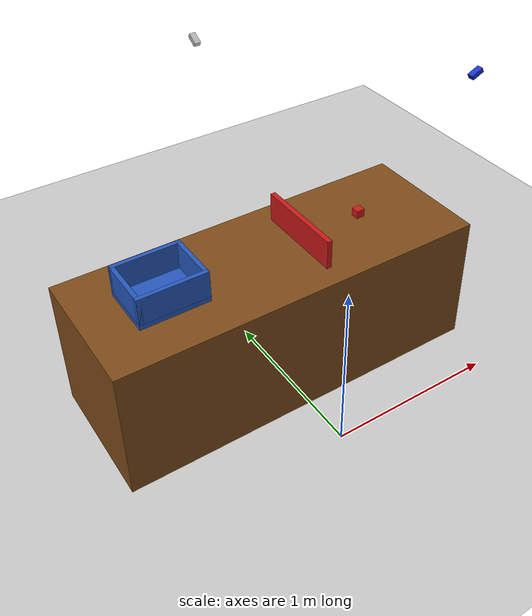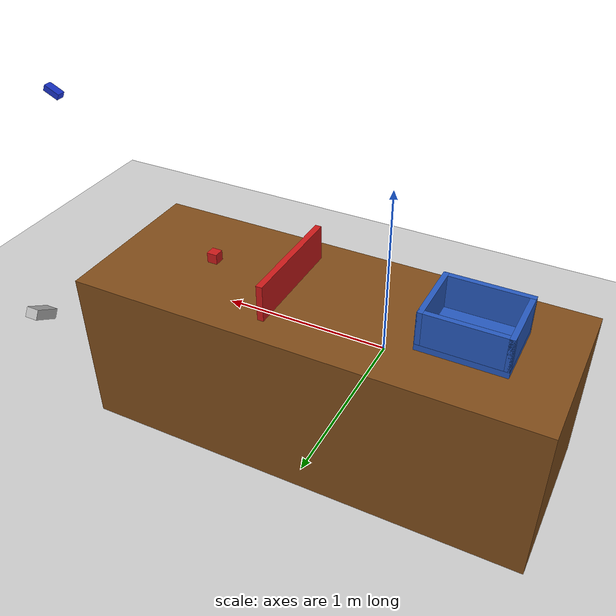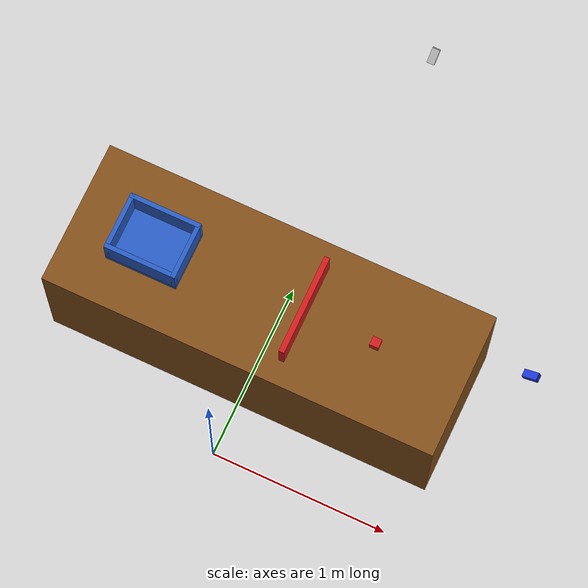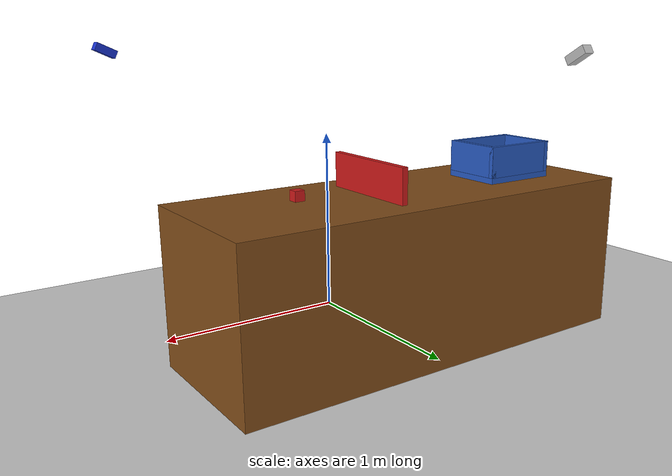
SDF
<?xml version="1.0" ?>
<sdf version="1.6">
  <world name="grasping_world">

    <!-- Publish /gazebo/model_states for the Planning Scene synchronizer. -->
    <plugin name="gazebo_ros_state" filename="libgazebo_ros_state.so">
      <ros>
        <namespace>/gazebo</namespace>
      </ros>
      <update_rate>10.0</update_rate>
    </plugin>

    <gravity>0 0 -9.81</gravity>

    <!-- 物理引擎参数 -->
    <physics name="default_physics" type="ode">
      <max_step_size>0.001</max_step_size>
      <real_time_factor>1.0</real_time_factor>
      <real_time_update_rate>1000</real_time_update_rate>
    </physics>

    <!-- 环境光 -->
    <scene>
      <ambient>0.4 0.4 0.4 1</ambient>
      <background>0.7 0.7 0.7 1</background>
      <shadows>false</shadows>
    </scene>

    <!-- 太阳光 -->
    <include>
      <uri>model://sun</uri>
    </include>

    <!-- 地面 -->
    <include>
      <uri>model://ground_plane</uri>
    </include>

    <!-- 工作台 -->
    <model name="work_table">
      <static>true</static>

      <!-- 工作台位置 -->
      <pose>0.0 0.7 0.4 0 0 0</pose>

      <link name="table_link">

        <!-- 碰撞模型 -->
        <collision name="collision">
          <geometry>
            <box>
              <size>2.2 0.8 0.8</size>
            </box>
          </geometry>
        </collision>

        <!-- 可视化模型 -->
        <visual name="visual">
          <geometry>
            <box>
              <size>2.2 0.8 0.8</size>
            </box>
          </geometry>

          <material>
            <ambient>0.5 0.3 0.1 1</ambient>
            <diffuse>0.5 0.3 0.1 1</diffuse>
          </material>
        </visual>

      </link>
    </model>

    <!-- 障碍物1 -->
    <model name="obstacle_box">
      <static>true</static>
      <!-- 放在桌面上方 -->
      <pose>0.2 0.7 0.85 0 0 0</pose>

      <link name="obstacle_link">

        <!-- 惯性参数 -->
        <inertial>
          <mass>0.9</mass>
          <inertia>
            <ixx>0.000083</ixx>
            <iyy>0.000083</iyy>
            <izz>0.000083</izz>
          </inertia>
        </inertial>

        <!-- 碰撞模型 -->
        <collision name="collision">
          <geometry>
            <box>
              <size>0.03 0.55 0.25</size>
            </box>
          </geometry>

          <surface>
            <friction>
              <ode>
                <!-- 增加摩擦力，方便夹爪抓取 -->
                <mu>1.0</mu>
                <mu2>1.0</mu2>
              </ode>
            </friction>
          </surface>
        </collision>

        <!-- 可视化模型 -->
        <visual name="visual">
          <geometry>
            <box>
              <size>0.03 0.55 0.25</size>
            </box>
          </geometry>

          <material>
            <ambient>0.8 0.1 0.1 1</ambient>
            <diffuse>0.8 0.1 0.1 1</diffuse>
          </material>
        </visual>

      </link>
    </model>

    <!-- 待抓取立方体 -->
    <model name="grasp_box">

      <!-- 放在桌面上方 -->
      <pose>0.6 0.7 0.85 0 0 0</pose>

      <link name="box_link">

        <!-- 惯性参数 -->
        <inertial>
          <mass>0.2</mass>
          <inertia>
            <ixx>0.000083</ixx>
            <iyy>0.000083</iyy>
            <izz>0.000083</izz>
          </inertia>
        </inertial>

        <!-- 碰撞模型 -->
        <collision name="collision">
          <geometry>
            <box>
              <size>0.05 0.05 0.05</size>
            </box>
          </geometry>

          <surface>
            <friction>
              <ode>
                <!-- 增加摩擦力，方便夹爪抓取 -->
                <mu>1.0</mu>
                <mu2>1.0</mu2>
              </ode>
            </friction>
          </surface>
        </collision>

        <!-- 可视化模型 -->
        <visual name="visual">
          <geometry>
            <box>
              <size>0.05 0.05 0.05</size>
            </box>
          </geometry>

          <material>
            <ambient>0.8 0.1 0.1 1</ambient>
            <diffuse>0.8 0.1 0.1 1</diffuse>
          </material>
        </visual>

      </link>
    </model>

    <!-- Gazebo 默认相机位置 -->
    <gui fullscreen="0">
      <camera name="user_camera">
        <pose>2.5 -2.5 1.8 0 0.35 2.35</pose>
        <view_controller>orbit</view_controller>
      </camera>
    </gui>

    <!-- 固定工作区深度相机 -->
    <model name="workspace_camera">
      <static>true</static>

      <!-- 位置后面根据实际视野调整 -->
      <pose>0.3 2 1.5 0 0.534 -1.57079632679</pose>

      <link name="workspace_camera_link">

        <visual name="camera_visual">
          <geometry>
            <box>
              <size>0.08 0.04 0.03</size>
            </box>
          </geometry>
        </visual>

        <sensor name="workspace_depth_camera" type="depth">
          <always_on>true</always_on>
          <update_rate>30</update_rate>
          <visualize>true</visualize>

          <camera>
            <horizontal_fov>1.57</horizontal_fov>

            <image>
              <width>640</width>
              <height>480</height>
              <format>B8G8R8</format>
            </image>

            <depth_camera/>

            <clip>
              <near>0.10</near>
              <far>5.0</far>
            </clip>
          </camera>

          <plugin name="workspace_depth_camera_controller" filename="libgazebo_ros_camera.so">

            <ros>
              <namespace>/</namespace>
            </ros>

            <camera_name>workspace_camera</camera_name>

            <frame_name>
              workspace_camera_optical_frame
            </frame_name>

            <min_depth>0.10</min_depth>
            <max_depth>5.0</max_depth>

          </plugin>
        </sensor>

      </link>

      <link name="workspace_camera_optical_frame">
        <pose>
          0 0 0
          -1.57079632679 0 -1.57079632679
        </pose>

      </link>
      <joint
        name="workspace_camera_optical_joint"
        type="fixed">

        <parent>workspace_camera_link</parent>
        <child>workspace_camera_optical_frame</child>

      </joint>
    </model>

    <!-- 第二台固定工作区深度相机：从 +X 侧倾斜俯视工作区       -->
    <!-- 位置: (1.4, 0.7, 1.5), 朝向 -X，并向下俯视约 25 deg    -->
    <model name="workspace_camera_2">
      <static>true</static>

      <!--
        Gazebo camera 的 +X 为前向。
        yaw = pi 使相机朝向 world -X；
        pitch = 0.434 rad 使视线向下倾斜约 25 deg。
      -->
      <pose>1.4 0.7 1.5 0 0.434 3.14159265359</pose>

      <link name="workspace_camera_2_link">

        <visual name="camera_visual">
          <geometry>
            <box>
              <size>0.08 0.04 0.03</size>
            </box>
          </geometry>
          <material>
            <ambient>0.1 0.2 0.8 1</ambient>
            <diffuse>0.1 0.2 0.8 1</diffuse>
          </material>
        </visual>

        <sensor name="workspace_depth_camera_2" type="depth">
          <always_on>true</always_on>
          <update_rate>30</update_rate>
          <visualize>true</visualize>

          <camera>
            <horizontal_fov>1.047</horizontal_fov>

            <image>
              <width>640</width>
              <height>480</height>
              <format>B8G8R8</format>
            </image>

            <depth_camera/>

            <clip>
              <near>0.10</near>
              <far>5.0</far>
            </clip>
          </camera>

          <plugin name="workspace_depth_camera_2_controller"
                  filename="libgazebo_ros_camera.so">

            <ros>
              <namespace>/</namespace>
            </ros>

            <camera_name>workspace_camera_2</camera_name>

            <frame_name>
              workspace_camera_2_optical_frame
            </frame_name>

            <min_depth>0.10</min_depth>
            <max_depth>5.0</max_depth>

          </plugin>
        </sensor>

      </link>

      <!-- optical frame: X right, Y down, Z forward -->
      <link name="workspace_camera_2_optical_frame">
        <pose>
          0 0 0
          -1.57079632679 0 -1.57079632679
        </pose>
      </link>

      <joint name="workspace_camera_2_optical_joint" type="fixed">
        <parent>workspace_camera_2_link</parent>
        <child>workspace_camera_2_optical_frame</child>
      </joint>

    </model>

    <!-- 抓取物放置筐：位于工作台左侧                           -->
    <!-- 外部尺寸约 0.40 x 0.32 m，壁高 0.16 m                  -->
    <!-- 桌面高度 z = 0.8，因此筐模型原点放在桌面处             -->
    <model name="placement_bin">
      <static>true</static>

      <!-- 放在桌面左侧，避开当前抓取物和中间障碍物 -->
      <pose>-0.65 0.7 0.8 0 0 0</pose>

      <link name="placement_bin_link">

        <!-- 底板 -->
        <collision name="base_collision">
          <pose>0 0 0.015 0 0 0</pose>
          <geometry>
            <box>
              <size>0.40 0.32 0.03</size>
            </box>
          </geometry>
        </collision>

        <visual name="base_visual">
          <pose>0 0 0.015 0 0 0</pose>
          <geometry>
            <box>
              <size>0.40 0.32 0.03</size>
            </box>
          </geometry>
          <material>
            <ambient>0.15 0.35 0.75 1</ambient>
            <diffuse>0.15 0.35 0.75 1</diffuse>
          </material>
        </visual>

        <!-- +Y 侧壁 -->
        <collision name="wall_pos_y_collision">
          <pose>0 0.1475 0.11 0 0 0</pose>
          <geometry>
            <box>
              <size>0.40 0.025 0.16</size>
            </box>
          </geometry>
        </collision>

        <visual name="wall_pos_y_visual">
          <pose>0 0.1475 0.11 0 0 0</pose>
          <geometry>
            <box>
              <size>0.40 0.025 0.16</size>
            </box>
          </geometry>
          <material>
            <ambient>0.15 0.35 0.75 1</ambient>
            <diffuse>0.15 0.35 0.75 1</diffuse>
          </material>
        </visual>

        <!-- -Y 侧壁 -->
        <collision name="wall_neg_y_collision">
          <pose>0 -0.1475 0.11 0 0 0</pose>
          <geometry>
            <box>
              <size>0.40 0.025 0.16</size>
            </box>
          </geometry>
        </collision>

        <visual name="wall_neg_y_visual">
          <pose>0 -0.1475 0.11 0 0 0</pose>
          <geometry>
            <box>
              <size>0.40 0.025 0.16</size>
            </box>
          </geometry>
          <material>
            <ambient>0.15 0.35 0.75 1</ambient>
            <diffuse>0.15 0.35 0.75 1</diffuse>
          </material>
        </visual>

        <!-- +X 侧壁 -->
        <collision name="wall_pos_x_collision">
          <pose>0.1875 0 0.11 0 0 0</pose>
          <geometry>
            <box>
              <size>0.025 0.32 0.16</size>
            </box>
          </geometry>
        </collision>

        <visual name="wall_pos_x_visual">
          <pose>0.1875 0 0.11 0 0 0</pose>
          <geometry>
            <box>
              <size>0.025 0.32 0.16</size>
            </box>
          </geometry>
          <material>
            <ambient>0.15 0.35 0.75 1</ambient>
            <diffuse>0.15 0.35 0.75 1</diffuse>
          </material>
        </visual>

        <!-- -X 侧壁 -->
        <collision name="wall_neg_x_collision">
          <pose>-0.1875 0 0.11 0 0 0</pose>
          <geometry>
            <box>
              <size>0.025 0.32 0.16</size>
            </box>
          </geometry>
        </collision>

        <visual name="wall_neg_x_visual">
          <pose>-0.1875 0 0.11 0 0 0</pose>
          <geometry>
            <box>
              <size>0.025 0.32 0.16</size>
            </box>
          </geometry>
          <material>
            <ambient>0.15 0.35 0.75 1</ambient>
            <diffuse>0.15 0.35 0.75 1</diffuse>
          </material>
        </visual>

      </link>
    </model>

  </world>
</sdf>
